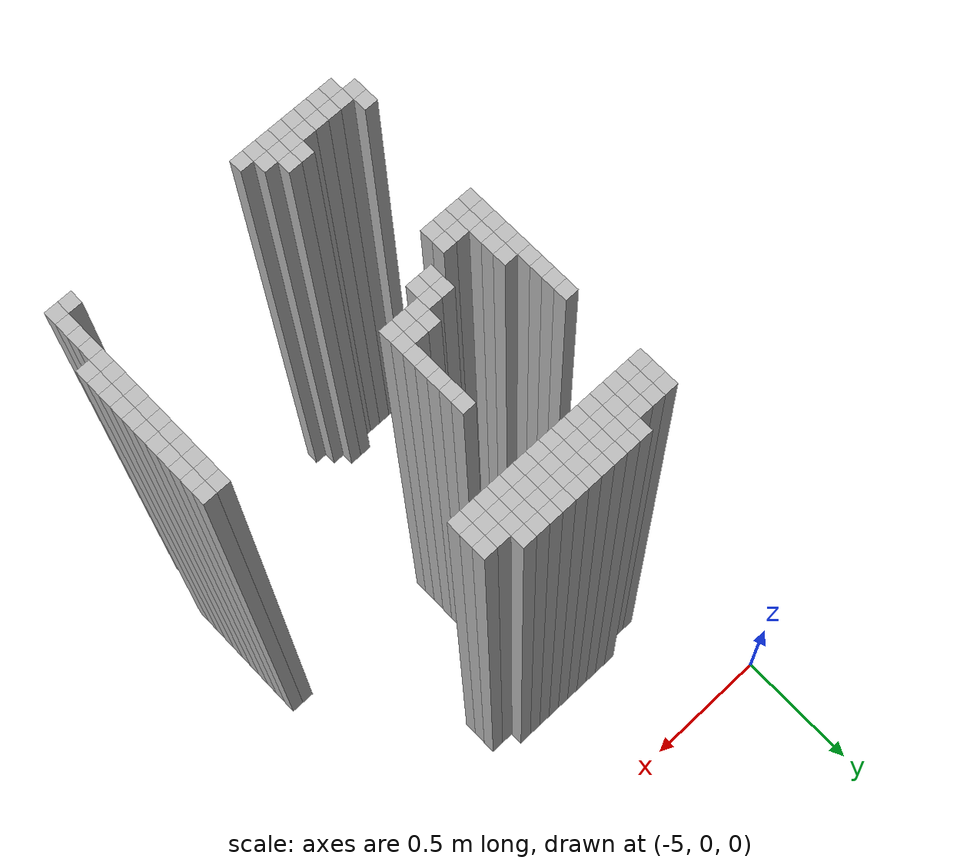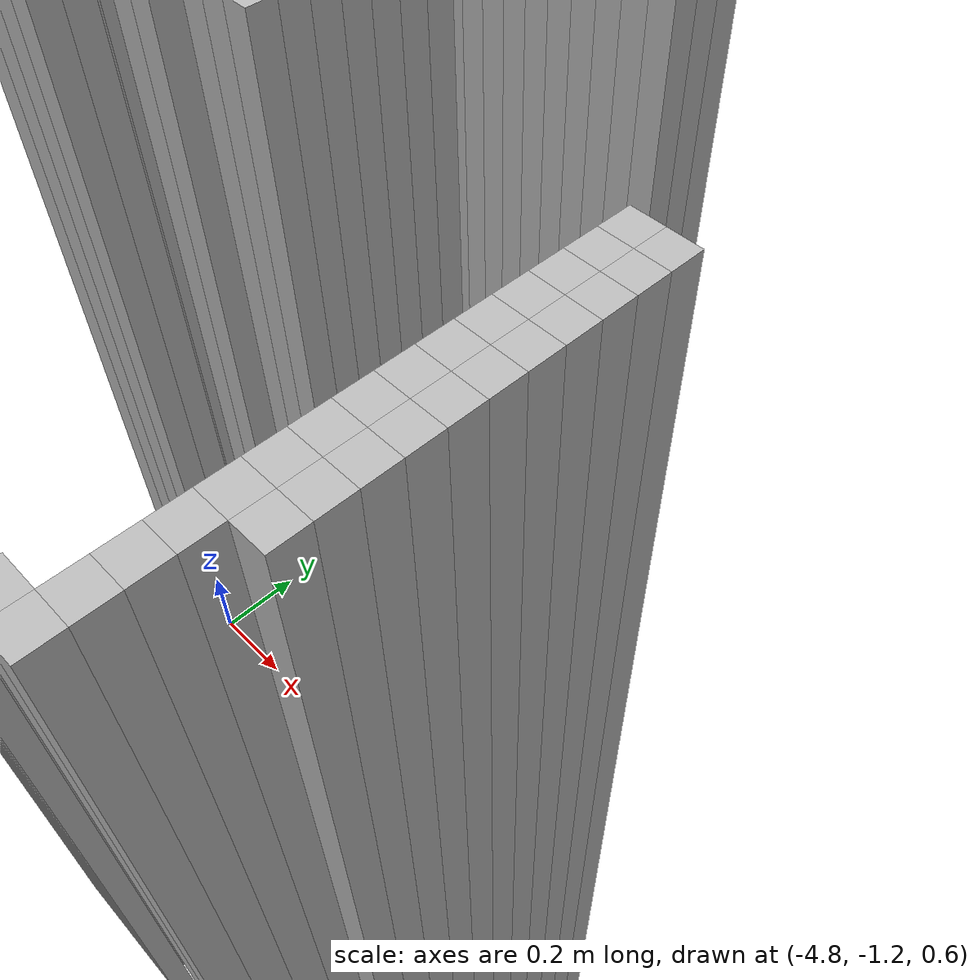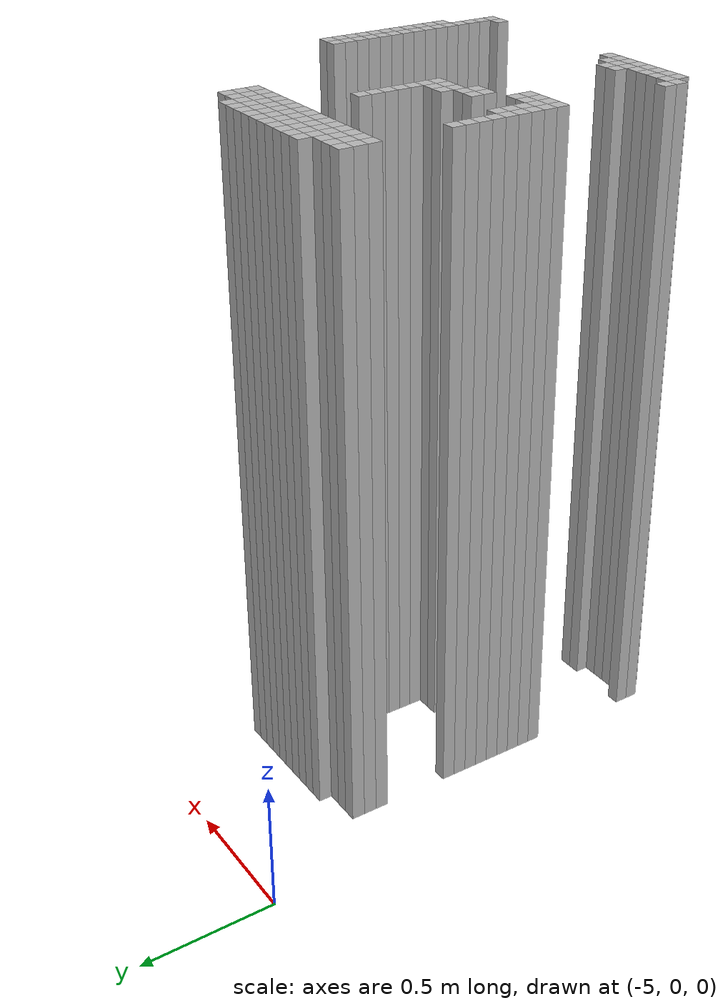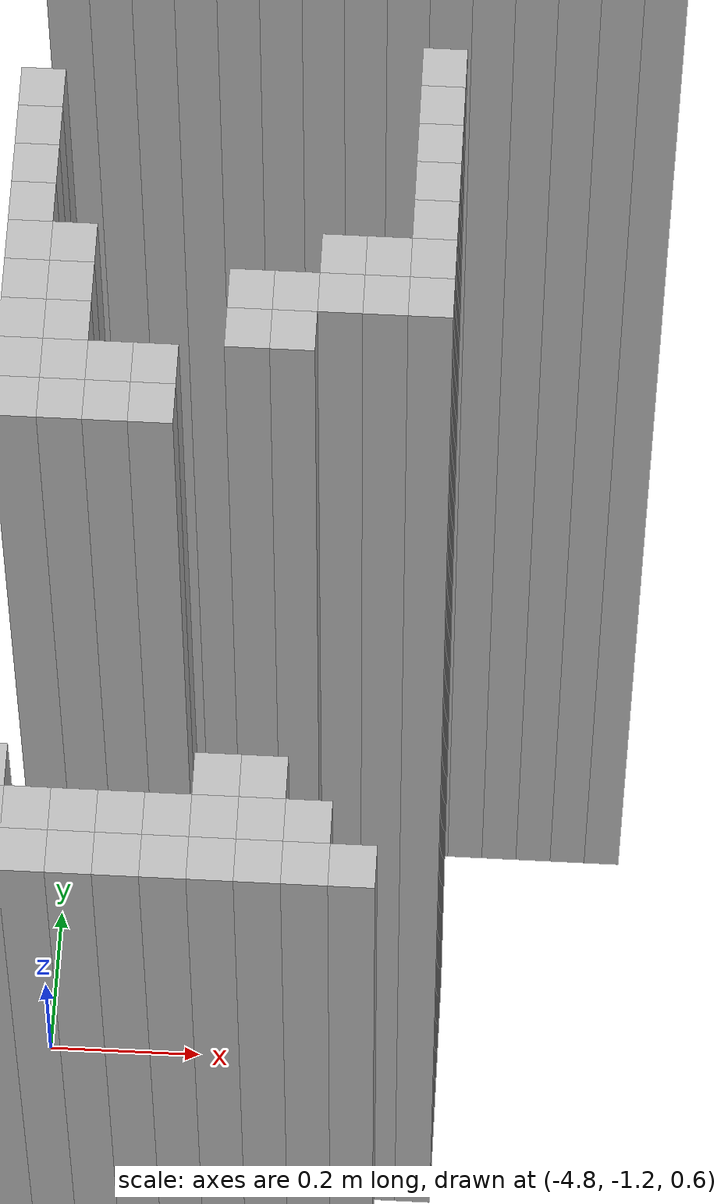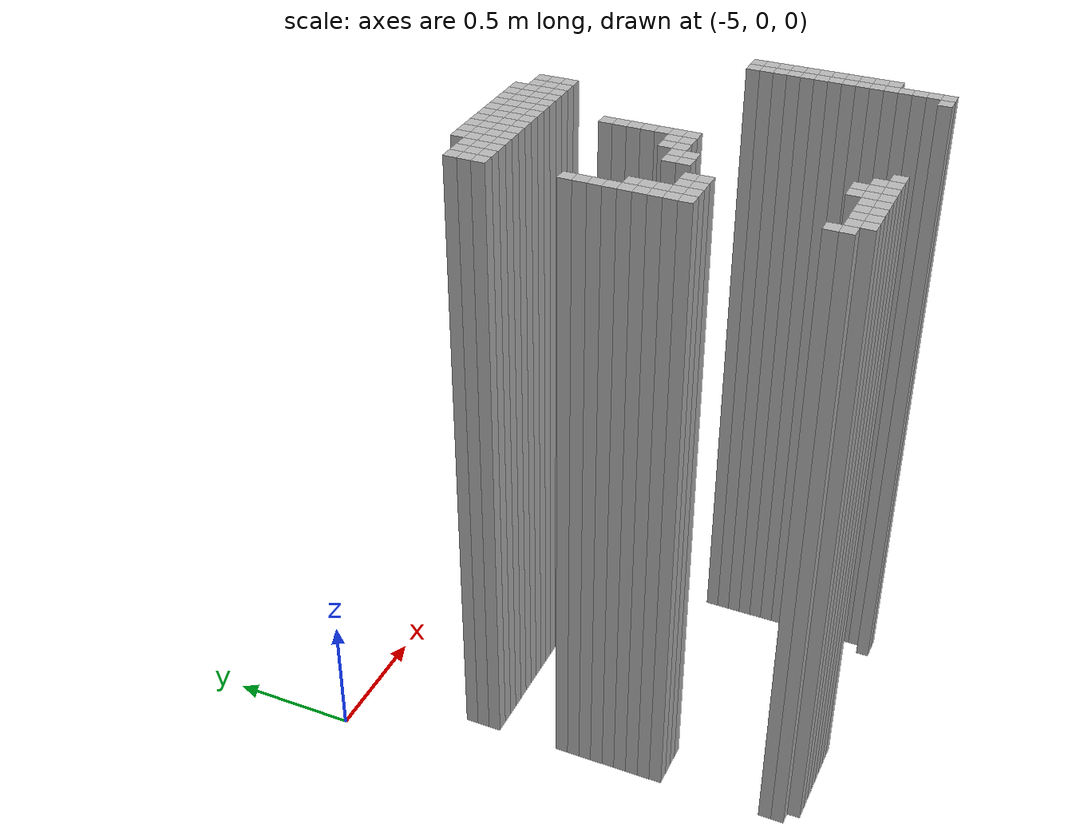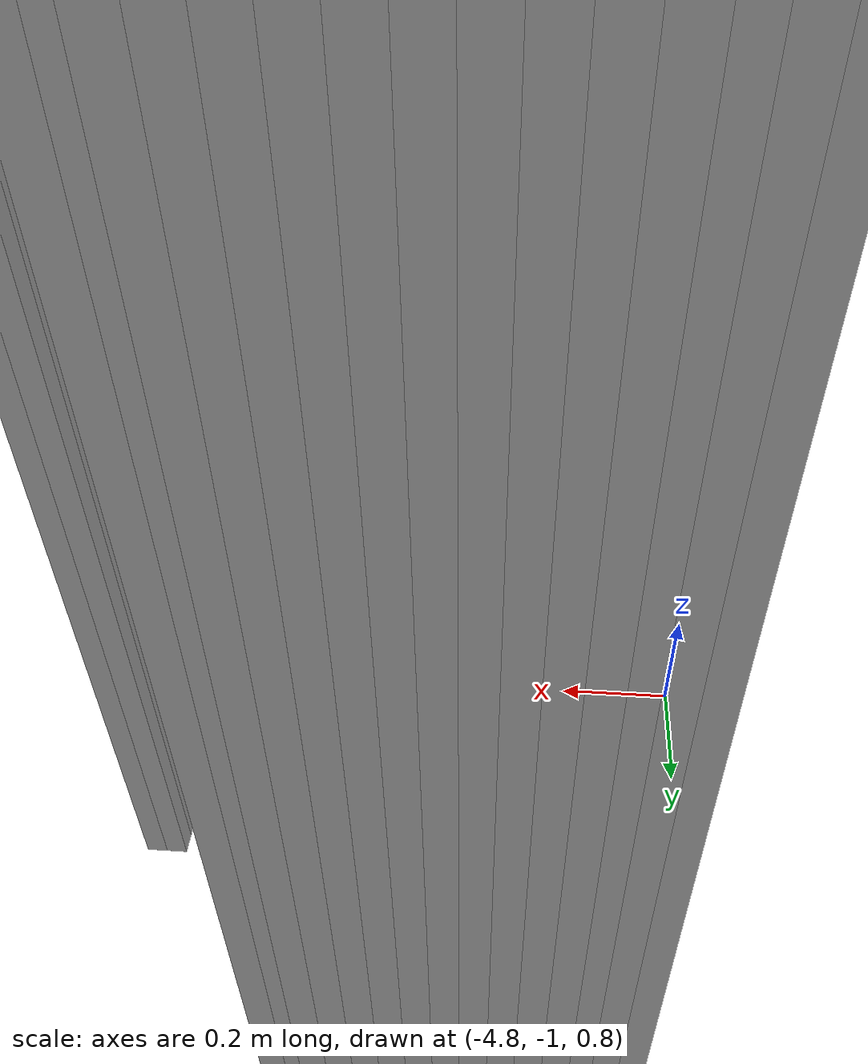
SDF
<sdf version="1.9">
 <world name="map_world">
  <model name="wall_131_162">
   <static>true</static>
   <pose>-4.611 -0.420 1.250 0 0 0</pose>
   <link name="link">
    <collision name="collision"><geometry><box><size>0.050 0.050 2.500</size></box></geometry></collision>
    <visual name="visual"><geometry><box><size>0.050 0.050 2.500</size></box></geometry></visual>
   </link>
  </model>
  <model name="wall_132_162">
   <static>true</static>
   <pose>-4.561 -0.420 1.250 0 0 0</pose>
   <link name="link">
    <collision name="collision"><geometry><box><size>0.050 0.050 2.500</size></box></geometry></collision>
    <visual name="visual"><geometry><box><size>0.050 0.050 2.500</size></box></geometry></visual>
   </link>
  </model>
  <model name="wall_133_162">
   <static>true</static>
   <pose>-4.511 -0.420 1.250 0 0 0</pose>
   <link name="link">
    <collision name="collision"><geometry><box><size>0.050 0.050 2.500</size></box></geometry></collision>
    <visual name="visual"><geometry><box><size>0.050 0.050 2.500</size></box></geometry></visual>
   </link>
  </model>
  <model name="wall_134_162">
   <static>true</static>
   <pose>-4.461 -0.420 1.250 0 0 0</pose>
   <link name="link">
    <collision name="collision"><geometry><box><size>0.050 0.050 2.500</size></box></geometry></collision>
    <visual name="visual"><geometry><box><size>0.050 0.050 2.500</size></box></geometry></visual>
   </link>
  </model>
  <model name="wall_135_162">
   <static>true</static>
   <pose>-4.411 -0.420 1.250 0 0 0</pose>
   <link name="link">
    <collision name="collision"><geometry><box><size>0.050 0.050 2.500</size></box></geometry></collision>
    <visual name="visual"><geometry><box><size>0.050 0.050 2.500</size></box></geometry></visual>
   </link>
  </model>
  <model name="wall_136_162">
   <static>true</static>
   <pose>-4.361 -0.420 1.250 0 0 0</pose>
   <link name="link">
    <collision name="collision"><geometry><box><size>0.050 0.050 2.500</size></box></geometry></collision>
    <visual name="visual"><geometry><box><size>0.050 0.050 2.500</size></box></geometry></visual>
   </link>
  </model>
  <model name="wall_137_162">
   <static>true</static>
   <pose>-4.311 -0.420 1.250 0 0 0</pose>
   <link name="link">
    <collision name="collision"><geometry><box><size>0.050 0.050 2.500</size></box></geometry></collision>
    <visual name="visual"><geometry><box><size>0.050 0.050 2.500</size></box></geometry></visual>
   </link>
  </model>
  <model name="wall_138_162">
   <static>true</static>
   <pose>-4.261 -0.420 1.250 0 0 0</pose>
   <link name="link">
    <collision name="collision"><geometry><box><size>0.050 0.050 2.500</size></box></geometry></collision>
    <visual name="visual"><geometry><box><size>0.050 0.050 2.500</size></box></geometry></visual>
   </link>
  </model>
  <model name="wall_139_162">
   <static>true</static>
   <pose>-4.211 -0.420 1.250 0 0 0</pose>
   <link name="link">
    <collision name="collision"><geometry><box><size>0.050 0.050 2.500</size></box></geometry></collision>
    <visual name="visual"><geometry><box><size>0.050 0.050 2.500</size></box></geometry></visual>
   </link>
  </model>
  <model name="wall_140_162">
   <static>true</static>
   <pose>-4.161 -0.420 1.250 0 0 0</pose>
   <link name="link">
    <collision name="collision"><geometry><box><size>0.050 0.050 2.500</size></box></geometry></collision>
    <visual name="visual"><geometry><box><size>0.050 0.050 2.500</size></box></geometry></visual>
   </link>
  </model>
  <model name="wall_128_163">
   <static>true</static>
   <pose>-4.761 -0.470 1.250 0 0 0</pose>
   <link name="link">
    <collision name="collision"><geometry><box><size>0.050 0.050 2.500</size></box></geometry></collision>
    <visual name="visual"><geometry><box><size>0.050 0.050 2.500</size></box></geometry></visual>
   </link>
  </model>
  <model name="wall_129_163">
   <static>true</static>
   <pose>-4.711 -0.470 1.250 0 0 0</pose>
   <link name="link">
    <collision name="collision"><geometry><box><size>0.050 0.050 2.500</size></box></geometry></collision>
    <visual name="visual"><geometry><box><size>0.050 0.050 2.500</size></box></geometry></visual>
   </link>
  </model>
  <model name="wall_130_163">
   <static>true</static>
   <pose>-4.661 -0.470 1.250 0 0 0</pose>
   <link name="link">
    <collision name="collision"><geometry><box><size>0.050 0.050 2.500</size></box></geometry></collision>
    <visual name="visual"><geometry><box><size>0.050 0.050 2.500</size></box></geometry></visual>
   </link>
  </model>
  <model name="wall_131_163">
   <static>true</static>
   <pose>-4.611 -0.470 1.250 0 0 0</pose>
   <link name="link">
    <collision name="collision"><geometry><box><size>0.050 0.050 2.500</size></box></geometry></collision>
    <visual name="visual"><geometry><box><size>0.050 0.050 2.500</size></box></geometry></visual>
   </link>
  </model>
  <model name="wall_132_163">
   <static>true</static>
   <pose>-4.561 -0.470 1.250 0 0 0</pose>
   <link name="link">
    <collision name="collision"><geometry><box><size>0.050 0.050 2.500</size></box></geometry></collision>
    <visual name="visual"><geometry><box><size>0.050 0.050 2.500</size></box></geometry></visual>
   </link>
  </model>
  <model name="wall_133_163">
   <static>true</static>
   <pose>-4.511 -0.470 1.250 0 0 0</pose>
   <link name="link">
    <collision name="collision"><geometry><box><size>0.050 0.050 2.500</size></box></geometry></collision>
    <visual name="visual"><geometry><box><size>0.050 0.050 2.500</size></box></geometry></visual>
   </link>
  </model>
  <model name="wall_134_163">
   <static>true</static>
   <pose>-4.461 -0.470 1.250 0 0 0</pose>
   <link name="link">
    <collision name="collision"><geometry><box><size>0.050 0.050 2.500</size></box></geometry></collision>
    <visual name="visual"><geometry><box><size>0.050 0.050 2.500</size></box></geometry></visual>
   </link>
  </model>
  <model name="wall_135_163">
   <static>true</static>
   <pose>-4.411 -0.470 1.250 0 0 0</pose>
   <link name="link">
    <collision name="collision"><geometry><box><size>0.050 0.050 2.500</size></box></geometry></collision>
    <visual name="visual"><geometry><box><size>0.050 0.050 2.500</size></box></geometry></visual>
   </link>
  </model>
  <model name="wall_136_163">
   <static>true</static>
   <pose>-4.361 -0.470 1.250 0 0 0</pose>
   <link name="link">
    <collision name="collision"><geometry><box><size>0.050 0.050 2.500</size></box></geometry></collision>
    <visual name="visual"><geometry><box><size>0.050 0.050 2.500</size></box></geometry></visual>
   </link>
  </model>
  <model name="wall_137_163">
   <static>true</static>
   <pose>-4.311 -0.470 1.250 0 0 0</pose>
   <link name="link">
    <collision name="collision"><geometry><box><size>0.050 0.050 2.500</size></box></geometry></collision>
    <visual name="visual"><geometry><box><size>0.050 0.050 2.500</size></box></geometry></visual>
   </link>
  </model>
  <model name="wall_138_163">
   <static>true</static>
   <pose>-4.261 -0.470 1.250 0 0 0</pose>
   <link name="link">
    <collision name="collision"><geometry><box><size>0.050 0.050 2.500</size></box></geometry></collision>
    <visual name="visual"><geometry><box><size>0.050 0.050 2.500</size></box></geometry></visual>
   </link>
  </model>
  <model name="wall_139_163">
   <static>true</static>
   <pose>-4.211 -0.470 1.250 0 0 0</pose>
   <link name="link">
    <collision name="collision"><geometry><box><size>0.050 0.050 2.500</size></box></geometry></collision>
    <visual name="visual"><geometry><box><size>0.050 0.050 2.500</size></box></geometry></visual>
   </link>
  </model>
  <model name="wall_140_163">
   <static>true</static>
   <pose>-4.161 -0.470 1.250 0 0 0</pose>
   <link name="link">
    <collision name="collision"><geometry><box><size>0.050 0.050 2.500</size></box></geometry></collision>
    <visual name="visual"><geometry><box><size>0.050 0.050 2.500</size></box></geometry></visual>
   </link>
  </model>
  <model name="wall_141_163">
   <static>true</static>
   <pose>-4.111 -0.470 1.250 0 0 0</pose>
   <link name="link">
    <collision name="collision"><geometry><box><size>0.050 0.050 2.500</size></box></geometry></collision>
    <visual name="visual"><geometry><box><size>0.050 0.050 2.500</size></box></geometry></visual>
   </link>
  </model>
  <model name="wall_142_163">
   <static>true</static>
   <pose>-4.061 -0.470 1.250 0 0 0</pose>
   <link name="link">
    <collision name="collision"><geometry><box><size>0.050 0.050 2.500</size></box></geometry></collision>
    <visual name="visual"><geometry><box><size>0.050 0.050 2.500</size></box></geometry></visual>
   </link>
  </model>
  <model name="wall_128_164">
   <static>true</static>
   <pose>-4.761 -0.520 1.250 0 0 0</pose>
   <link name="link">
    <collision name="collision"><geometry><box><size>0.050 0.050 2.500</size></box></geometry></collision>
    <visual name="visual"><geometry><box><size>0.050 0.050 2.500</size></box></geometry></visual>
   </link>
  </model>
  <model name="wall_129_164">
   <static>true</static>
   <pose>-4.711 -0.520 1.250 0 0 0</pose>
   <link name="link">
    <collision name="collision"><geometry><box><size>0.050 0.050 2.500</size></box></geometry></collision>
    <visual name="visual"><geometry><box><size>0.050 0.050 2.500</size></box></geometry></visual>
   </link>
  </model>
  <model name="wall_130_164">
   <static>true</static>
   <pose>-4.661 -0.520 1.250 0 0 0</pose>
   <link name="link">
    <collision name="collision"><geometry><box><size>0.050 0.050 2.500</size></box></geometry></collision>
    <visual name="visual"><geometry><box><size>0.050 0.050 2.500</size></box></geometry></visual>
   </link>
  </model>
  <model name="wall_131_164">
   <static>true</static>
   <pose>-4.611 -0.520 1.250 0 0 0</pose>
   <link name="link">
    <collision name="collision"><geometry><box><size>0.050 0.050 2.500</size></box></geometry></collision>
    <visual name="visual"><geometry><box><size>0.050 0.050 2.500</size></box></geometry></visual>
   </link>
  </model>
  <model name="wall_132_164">
   <static>true</static>
   <pose>-4.561 -0.520 1.250 0 0 0</pose>
   <link name="link">
    <collision name="collision"><geometry><box><size>0.050 0.050 2.500</size></box></geometry></collision>
    <visual name="visual"><geometry><box><size>0.050 0.050 2.500</size></box></geometry></visual>
   </link>
  </model>
  <model name="wall_133_164">
   <static>true</static>
   <pose>-4.511 -0.520 1.250 0 0 0</pose>
   <link name="link">
    <collision name="collision"><geometry><box><size>0.050 0.050 2.500</size></box></geometry></collision>
    <visual name="visual"><geometry><box><size>0.050 0.050 2.500</size></box></geometry></visual>
   </link>
  </model>
  <model name="wall_134_164">
   <static>true</static>
   <pose>-4.461 -0.520 1.250 0 0 0</pose>
   <link name="link">
    <collision name="collision"><geometry><box><size>0.050 0.050 2.500</size></box></geometry></collision>
    <visual name="visual"><geometry><box><size>0.050 0.050 2.500</size></box></geometry></visual>
   </link>
  </model>
  <model name="wall_135_164">
   <static>true</static>
   <pose>-4.411 -0.520 1.250 0 0 0</pose>
   <link name="link">
    <collision name="collision"><geometry><box><size>0.050 0.050 2.500</size></box></geometry></collision>
    <visual name="visual"><geometry><box><size>0.050 0.050 2.500</size></box></geometry></visual>
   </link>
  </model>
  <model name="wall_136_164">
   <static>true</static>
   <pose>-4.361 -0.520 1.250 0 0 0</pose>
   <link name="link">
    <collision name="collision"><geometry><box><size>0.050 0.050 2.500</size></box></geometry></collision>
    <visual name="visual"><geometry><box><size>0.050 0.050 2.500</size></box></geometry></visual>
   </link>
  </model>
  <model name="wall_137_164">
   <static>true</static>
   <pose>-4.311 -0.520 1.250 0 0 0</pose>
   <link name="link">
    <collision name="collision"><geometry><box><size>0.050 0.050 2.500</size></box></geometry></collision>
    <visual name="visual"><geometry><box><size>0.050 0.050 2.500</size></box></geometry></visual>
   </link>
  </model>
  <model name="wall_138_164">
   <static>true</static>
   <pose>-4.261 -0.520 1.250 0 0 0</pose>
   <link name="link">
    <collision name="collision"><geometry><box><size>0.050 0.050 2.500</size></box></geometry></collision>
    <visual name="visual"><geometry><box><size>0.050 0.050 2.500</size></box></geometry></visual>
   </link>
  </model>
  <model name="wall_139_164">
   <static>true</static>
   <pose>-4.211 -0.520 1.250 0 0 0</pose>
   <link name="link">
    <collision name="collision"><geometry><box><size>0.050 0.050 2.500</size></box></geometry></collision>
    <visual name="visual"><geometry><box><size>0.050 0.050 2.500</size></box></geometry></visual>
   </link>
  </model>
  <model name="wall_140_164">
   <static>true</static>
   <pose>-4.161 -0.520 1.250 0 0 0</pose>
   <link name="link">
    <collision name="collision"><geometry><box><size>0.050 0.050 2.500</size></box></geometry></collision>
    <visual name="visual"><geometry><box><size>0.050 0.050 2.500</size></box></geometry></visual>
   </link>
  </model>
  <model name="wall_141_164">
   <static>true</static>
   <pose>-4.111 -0.520 1.250 0 0 0</pose>
   <link name="link">
    <collision name="collision"><geometry><box><size>0.050 0.050 2.500</size></box></geometry></collision>
    <visual name="visual"><geometry><box><size>0.050 0.050 2.500</size></box></geometry></visual>
   </link>
  </model>
  <model name="wall_142_164">
   <static>true</static>
   <pose>-4.061 -0.520 1.250 0 0 0</pose>
   <link name="link">
    <collision name="collision"><geometry><box><size>0.050 0.050 2.500</size></box></geometry></collision>
    <visual name="visual"><geometry><box><size>0.050 0.050 2.500</size></box></geometry></visual>
   </link>
  </model>
  <model name="wall_128_165">
   <static>true</static>
   <pose>-4.761 -0.570 1.250 0 0 0</pose>
   <link name="link">
    <collision name="collision"><geometry><box><size>0.050 0.050 2.500</size></box></geometry></collision>
    <visual name="visual"><geometry><box><size>0.050 0.050 2.500</size></box></geometry></visual>
   </link>
  </model>
  <model name="wall_129_165">
   <static>true</static>
   <pose>-4.711 -0.570 1.250 0 0 0</pose>
   <link name="link">
    <collision name="collision"><geometry><box><size>0.050 0.050 2.500</size></box></geometry></collision>
    <visual name="visual"><geometry><box><size>0.050 0.050 2.500</size></box></geometry></visual>
   </link>
  </model>
  <model name="wall_130_165">
   <static>true</static>
   <pose>-4.661 -0.570 1.250 0 0 0</pose>
   <link name="link">
    <collision name="collision"><geometry><box><size>0.050 0.050 2.500</size></box></geometry></collision>
    <visual name="visual"><geometry><box><size>0.050 0.050 2.500</size></box></geometry></visual>
   </link>
  </model>
  <model name="wall_131_165">
   <static>true</static>
   <pose>-4.611 -0.570 1.250 0 0 0</pose>
   <link name="link">
    <collision name="collision"><geometry><box><size>0.050 0.050 2.500</size></box></geometry></collision>
    <visual name="visual"><geometry><box><size>0.050 0.050 2.500</size></box></geometry></visual>
   </link>
  </model>
  <model name="wall_132_165">
   <static>true</static>
   <pose>-4.561 -0.570 1.250 0 0 0</pose>
   <link name="link">
    <collision name="collision"><geometry><box><size>0.050 0.050 2.500</size></box></geometry></collision>
    <visual name="visual"><geometry><box><size>0.050 0.050 2.500</size></box></geometry></visual>
   </link>
  </model>
  <model name="wall_133_165">
   <static>true</static>
   <pose>-4.511 -0.570 1.250 0 0 0</pose>
   <link name="link">
    <collision name="collision"><geometry><box><size>0.050 0.050 2.500</size></box></geometry></collision>
    <visual name="visual"><geometry><box><size>0.050 0.050 2.500</size></box></geometry></visual>
   </link>
  </model>
  <model name="wall_134_165">
   <static>true</static>
   <pose>-4.461 -0.570 1.250 0 0 0</pose>
   <link name="link">
    <collision name="collision"><geometry><box><size>0.050 0.050 2.500</size></box></geometry></collision>
    <visual name="visual"><geometry><box><size>0.050 0.050 2.500</size></box></geometry></visual>
   </link>
  </model>
  <model name="wall_135_165">
   <static>true</static>
   <pose>-4.411 -0.570 1.250 0 0 0</pose>
   <link name="link">
    <collision name="collision"><geometry><box><size>0.050 0.050 2.500</size></box></geometry></collision>
    <visual name="visual"><geometry><box><size>0.050 0.050 2.500</size></box></geometry></visual>
   </link>
  </model>
  <model name="wall_136_165">
   <static>true</static>
   <pose>-4.361 -0.570 1.250 0 0 0</pose>
   <link name="link">
    <collision name="collision"><geometry><box><size>0.050 0.050 2.500</size></box></geometry></collision>
    <visual name="visual"><geometry><box><size>0.050 0.050 2.500</size></box></geometry></visual>
   </link>
  </model>
  <model name="wall_137_165">
   <static>true</static>
   <pose>-4.311 -0.570 1.250 0 0 0</pose>
   <link name="link">
    <collision name="collision"><geometry><box><size>0.050 0.050 2.500</size></box></geometry></collision>
    <visual name="visual"><geometry><box><size>0.050 0.050 2.500</size></box></geometry></visual>
   </link>
  </model>
  <model name="wall_138_165">
   <static>true</static>
   <pose>-4.261 -0.570 1.250 0 0 0</pose>
   <link name="link">
    <collision name="collision"><geometry><box><size>0.050 0.050 2.500</size></box></geometry></collision>
    <visual name="visual"><geometry><box><size>0.050 0.050 2.500</size></box></geometry></visual>
   </link>
  </model>
  <model name="wall_139_165">
   <static>true</static>
   <pose>-4.211 -0.570 1.250 0 0 0</pose>
   <link name="link">
    <collision name="collision"><geometry><box><size>0.050 0.050 2.500</size></box></geometry></collision>
    <visual name="visual"><geometry><box><size>0.050 0.050 2.500</size></box></geometry></visual>
   </link>
  </model>
  <model name="wall_140_165">
   <static>true</static>
   <pose>-4.161 -0.570 1.250 0 0 0</pose>
   <link name="link">
    <collision name="collision"><geometry><box><size>0.050 0.050 2.500</size></box></geometry></collision>
    <visual name="visual"><geometry><box><size>0.050 0.050 2.500</size></box></geometry></visual>
   </link>
  </model>
  <model name="wall_141_165">
   <static>true</static>
   <pose>-4.111 -0.570 1.250 0 0 0</pose>
   <link name="link">
    <collision name="collision"><geometry><box><size>0.050 0.050 2.500</size></box></geometry></collision>
    <visual name="visual"><geometry><box><size>0.050 0.050 2.500</size></box></geometry></visual>
   </link>
  </model>
  <model name="wall_142_165">
   <static>true</static>
   <pose>-4.061 -0.570 1.250 0 0 0</pose>
   <link name="link">
    <collision name="collision"><geometry><box><size>0.050 0.050 2.500</size></box></geometry></collision>
    <visual name="visual"><geometry><box><size>0.050 0.050 2.500</size></box></geometry></visual>
   </link>
  </model>
  <model name="wall_137_170">
   <static>true</static>
   <pose>-4.311 -0.820 1.250 0 0 0</pose>
   <link name="link">
    <collision name="collision"><geometry><box><size>0.050 0.050 2.500</size></box></geometry></collision>
    <visual name="visual"><geometry><box><size>0.050 0.050 2.500</size></box></geometry></visual>
   </link>
  </model>
  <model name="wall_128_171">
   <static>true</static>
   <pose>-4.761 -0.870 1.250 0 0 0</pose>
   <link name="link">
    <collision name="collision"><geometry><box><size>0.050 0.050 2.500</size></box></geometry></collision>
    <visual name="visual"><geometry><box><size>0.050 0.050 2.500</size></box></geometry></visual>
   </link>
  </model>
  <model name="wall_137_171">
   <static>true</static>
   <pose>-4.311 -0.870 1.250 0 0 0</pose>
   <link name="link">
    <collision name="collision"><geometry><box><size>0.050 0.050 2.500</size></box></geometry></collision>
    <visual name="visual"><geometry><box><size>0.050 0.050 2.500</size></box></geometry></visual>
   </link>
  </model>
  <model name="wall_128_172">
   <static>true</static>
   <pose>-4.761 -0.920 1.250 0 0 0</pose>
   <link name="link">
    <collision name="collision"><geometry><box><size>0.050 0.050 2.500</size></box></geometry></collision>
    <visual name="visual"><geometry><box><size>0.050 0.050 2.500</size></box></geometry></visual>
   </link>
  </model>
  <model name="wall_137_172">
   <static>true</static>
   <pose>-4.311 -0.920 1.250 0 0 0</pose>
   <link name="link">
    <collision name="collision"><geometry><box><size>0.050 0.050 2.500</size></box></geometry></collision>
    <visual name="visual"><geometry><box><size>0.050 0.050 2.500</size></box></geometry></visual>
   </link>
  </model>
  <model name="wall_128_173">
   <static>true</static>
   <pose>-4.761 -0.970 1.250 0 0 0</pose>
   <link name="link">
    <collision name="collision"><geometry><box><size>0.050 0.050 2.500</size></box></geometry></collision>
    <visual name="visual"><geometry><box><size>0.050 0.050 2.500</size></box></geometry></visual>
   </link>
  </model>
  <model name="wall_137_173">
   <static>true</static>
   <pose>-4.311 -0.970 1.250 0 0 0</pose>
   <link name="link">
    <collision name="collision"><geometry><box><size>0.050 0.050 2.500</size></box></geometry></collision>
    <visual name="visual"><geometry><box><size>0.050 0.050 2.500</size></box></geometry></visual>
   </link>
  </model>
  <model name="wall_128_174">
   <static>true</static>
   <pose>-4.761 -1.020 1.250 0 0 0</pose>
   <link name="link">
    <collision name="collision"><geometry><box><size>0.050 0.050 2.500</size></box></geometry></collision>
    <visual name="visual"><geometry><box><size>0.050 0.050 2.500</size></box></geometry></visual>
   </link>
  </model>
  <model name="wall_137_174">
   <static>true</static>
   <pose>-4.311 -1.020 1.250 0 0 0</pose>
   <link name="link">
    <collision name="collision"><geometry><box><size>0.050 0.050 2.500</size></box></geometry></collision>
    <visual name="visual"><geometry><box><size>0.050 0.050 2.500</size></box></geometry></visual>
   </link>
  </model>
  <model name="wall_128_175">
   <static>true</static>
   <pose>-4.761 -1.070 1.250 0 0 0</pose>
   <link name="link">
    <collision name="collision"><geometry><box><size>0.050 0.050 2.500</size></box></geometry></collision>
    <visual name="visual"><geometry><box><size>0.050 0.050 2.500</size></box></geometry></visual>
   </link>
  </model>
  <model name="wall_129_175">
   <static>true</static>
   <pose>-4.711 -1.070 1.250 0 0 0</pose>
   <link name="link">
    <collision name="collision"><geometry><box><size>0.050 0.050 2.500</size></box></geometry></collision>
    <visual name="visual"><geometry><box><size>0.050 0.050 2.500</size></box></geometry></visual>
   </link>
  </model>
  <model name="wall_135_175">
   <static>true</static>
   <pose>-4.411 -1.070 1.250 0 0 0</pose>
   <link name="link">
    <collision name="collision"><geometry><box><size>0.050 0.050 2.500</size></box></geometry></collision>
    <visual name="visual"><geometry><box><size>0.050 0.050 2.500</size></box></geometry></visual>
   </link>
  </model>
  <model name="wall_136_175">
   <static>true</static>
   <pose>-4.361 -1.070 1.250 0 0 0</pose>
   <link name="link">
    <collision name="collision"><geometry><box><size>0.050 0.050 2.500</size></box></geometry></collision>
    <visual name="visual"><geometry><box><size>0.050 0.050 2.500</size></box></geometry></visual>
   </link>
  </model>
  <model name="wall_137_175">
   <static>true</static>
   <pose>-4.311 -1.070 1.250 0 0 0</pose>
   <link name="link">
    <collision name="collision"><geometry><box><size>0.050 0.050 2.500</size></box></geometry></collision>
    <visual name="visual"><geometry><box><size>0.050 0.050 2.500</size></box></geometry></visual>
   </link>
  </model>
  <model name="wall_128_176">
   <static>true</static>
   <pose>-4.761 -1.120 1.250 0 0 0</pose>
   <link name="link">
    <collision name="collision"><geometry><box><size>0.050 0.050 2.500</size></box></geometry></collision>
    <visual name="visual"><geometry><box><size>0.050 0.050 2.500</size></box></geometry></visual>
   </link>
  </model>
  <model name="wall_129_176">
   <static>true</static>
   <pose>-4.711 -1.120 1.250 0 0 0</pose>
   <link name="link">
    <collision name="collision"><geometry><box><size>0.050 0.050 2.500</size></box></geometry></collision>
    <visual name="visual"><geometry><box><size>0.050 0.050 2.500</size></box></geometry></visual>
   </link>
  </model>
  <model name="wall_133_176">
   <static>true</static>
   <pose>-4.511 -1.120 1.250 0 0 0</pose>
   <link name="link">
    <collision name="collision"><geometry><box><size>0.050 0.050 2.500</size></box></geometry></collision>
    <visual name="visual"><geometry><box><size>0.050 0.050 2.500</size></box></geometry></visual>
   </link>
  </model>
  <model name="wall_134_176">
   <static>true</static>
   <pose>-4.461 -1.120 1.250 0 0 0</pose>
   <link name="link">
    <collision name="collision"><geometry><box><size>0.050 0.050 2.500</size></box></geometry></collision>
    <visual name="visual"><geometry><box><size>0.050 0.050 2.500</size></box></geometry></visual>
   </link>
  </model>
  <model name="wall_135_176">
   <static>true</static>
   <pose>-4.411 -1.120 1.250 0 0 0</pose>
   <link name="link">
    <collision name="collision"><geometry><box><size>0.050 0.050 2.500</size></box></geometry></collision>
    <visual name="visual"><geometry><box><size>0.050 0.050 2.500</size></box></geometry></visual>
   </link>
  </model>
  <model name="wall_136_176">
   <static>true</static>
   <pose>-4.361 -1.120 1.250 0 0 0</pose>
   <link name="link">
    <collision name="collision"><geometry><box><size>0.050 0.050 2.500</size></box></geometry></collision>
    <visual name="visual"><geometry><box><size>0.050 0.050 2.500</size></box></geometry></visual>
   </link>
  </model>
  <model name="wall_137_176">
   <static>true</static>
   <pose>-4.311 -1.120 1.250 0 0 0</pose>
   <link name="link">
    <collision name="collision"><geometry><box><size>0.050 0.050 2.500</size></box></geometry></collision>
    <visual name="visual"><geometry><box><size>0.050 0.050 2.500</size></box></geometry></visual>
   </link>
  </model>
  <model name="wall_150_176">
   <static>true</static>
   <pose>-3.661 -1.120 1.250 0 0 0</pose>
   <link name="link">
    <collision name="collision"><geometry><box><size>0.050 0.050 2.500</size></box></geometry></collision>
    <visual name="visual"><geometry><box><size>0.050 0.050 2.500</size></box></geometry></visual>
   </link>
  </model>
  <model name="wall_151_176">
   <static>true</static>
   <pose>-3.611 -1.120 1.250 0 0 0</pose>
   <link name="link">
    <collision name="collision"><geometry><box><size>0.050 0.050 2.500</size></box></geometry></collision>
    <visual name="visual"><geometry><box><size>0.050 0.050 2.500</size></box></geometry></visual>
   </link>
  </model>
  <model name="wall_128_177">
   <static>true</static>
   <pose>-4.761 -1.170 1.250 0 0 0</pose>
   <link name="link">
    <collision name="collision"><geometry><box><size>0.050 0.050 2.500</size></box></geometry></collision>
    <visual name="visual"><geometry><box><size>0.050 0.050 2.500</size></box></geometry></visual>
   </link>
  </model>
  <model name="wall_129_177">
   <static>true</static>
   <pose>-4.711 -1.170 1.250 0 0 0</pose>
   <link name="link">
    <collision name="collision"><geometry><box><size>0.050 0.050 2.500</size></box></geometry></collision>
    <visual name="visual"><geometry><box><size>0.050 0.050 2.500</size></box></geometry></visual>
   </link>
  </model>
  <model name="wall_133_177">
   <static>true</static>
   <pose>-4.511 -1.170 1.250 0 0 0</pose>
   <link name="link">
    <collision name="collision"><geometry><box><size>0.050 0.050 2.500</size></box></geometry></collision>
    <visual name="visual"><geometry><box><size>0.050 0.050 2.500</size></box></geometry></visual>
   </link>
  </model>
  <model name="wall_134_177">
   <static>true</static>
   <pose>-4.461 -1.170 1.250 0 0 0</pose>
   <link name="link">
    <collision name="collision"><geometry><box><size>0.050 0.050 2.500</size></box></geometry></collision>
    <visual name="visual"><geometry><box><size>0.050 0.050 2.500</size></box></geometry></visual>
   </link>
  </model>
  <model name="wall_150_177">
   <static>true</static>
   <pose>-3.661 -1.170 1.250 0 0 0</pose>
   <link name="link">
    <collision name="collision"><geometry><box><size>0.050 0.050 2.500</size></box></geometry></collision>
    <visual name="visual"><geometry><box><size>0.050 0.050 2.500</size></box></geometry></visual>
   </link>
  </model>
  <model name="wall_151_177">
   <static>true</static>
   <pose>-3.611 -1.170 1.250 0 0 0</pose>
   <link name="link">
    <collision name="collision"><geometry><box><size>0.050 0.050 2.500</size></box></geometry></collision>
    <visual name="visual"><geometry><box><size>0.050 0.050 2.500</size></box></geometry></visual>
   </link>
  </model>
  <model name="wall_128_178">
   <static>true</static>
   <pose>-4.761 -1.220 1.250 0 0 0</pose>
   <link name="link">
    <collision name="collision"><geometry><box><size>0.050 0.050 2.500</size></box></geometry></collision>
    <visual name="visual"><geometry><box><size>0.050 0.050 2.500</size></box></geometry></visual>
   </link>
  </model>
  <model name="wall_129_178">
   <static>true</static>
   <pose>-4.711 -1.220 1.250 0 0 0</pose>
   <link name="link">
    <collision name="collision"><geometry><box><size>0.050 0.050 2.500</size></box></geometry></collision>
    <visual name="visual"><geometry><box><size>0.050 0.050 2.500</size></box></geometry></visual>
   </link>
  </model>
  <model name="wall_130_178">
   <static>true</static>
   <pose>-4.661 -1.220 1.250 0 0 0</pose>
   <link name="link">
    <collision name="collision"><geometry><box><size>0.050 0.050 2.500</size></box></geometry></collision>
    <visual name="visual"><geometry><box><size>0.050 0.050 2.500</size></box></geometry></visual>
   </link>
  </model>
  <model name="wall_131_178">
   <static>true</static>
   <pose>-4.611 -1.220 1.250 0 0 0</pose>
   <link name="link">
    <collision name="collision"><geometry><box><size>0.050 0.050 2.500</size></box></geometry></collision>
    <visual name="visual"><geometry><box><size>0.050 0.050 2.500</size></box></geometry></visual>
   </link>
  </model>
  <model name="wall_150_178">
   <static>true</static>
   <pose>-3.661 -1.220 1.250 0 0 0</pose>
   <link name="link">
    <collision name="collision"><geometry><box><size>0.050 0.050 2.500</size></box></geometry></collision>
    <visual name="visual"><geometry><box><size>0.050 0.050 2.500</size></box></geometry></visual>
   </link>
  </model>
  <model name="wall_151_178">
   <static>true</static>
   <pose>-3.611 -1.220 1.250 0 0 0</pose>
   <link name="link">
    <collision name="collision"><geometry><box><size>0.050 0.050 2.500</size></box></geometry></collision>
    <visual name="visual"><geometry><box><size>0.050 0.050 2.500</size></box></geometry></visual>
   </link>
  </model>
  <model name="wall_128_179">
   <static>true</static>
   <pose>-4.761 -1.270 1.250 0 0 0</pose>
   <link name="link">
    <collision name="collision"><geometry><box><size>0.050 0.050 2.500</size></box></geometry></collision>
    <visual name="visual"><geometry><box><size>0.050 0.050 2.500</size></box></geometry></visual>
   </link>
  </model>
  <model name="wall_129_179">
   <static>true</static>
   <pose>-4.711 -1.270 1.250 0 0 0</pose>
   <link name="link">
    <collision name="collision"><geometry><box><size>0.050 0.050 2.500</size></box></geometry></collision>
    <visual name="visual"><geometry><box><size>0.050 0.050 2.500</size></box></geometry></visual>
   </link>
  </model>
  <model name="wall_130_179">
   <static>true</static>
   <pose>-4.661 -1.270 1.250 0 0 0</pose>
   <link name="link">
    <collision name="collision"><geometry><box><size>0.050 0.050 2.500</size></box></geometry></collision>
    <visual name="visual"><geometry><box><size>0.050 0.050 2.500</size></box></geometry></visual>
   </link>
  </model>
  <model name="wall_131_179">
   <static>true</static>
   <pose>-4.611 -1.270 1.250 0 0 0</pose>
   <link name="link">
    <collision name="collision"><geometry><box><size>0.050 0.050 2.500</size></box></geometry></collision>
    <visual name="visual"><geometry><box><size>0.050 0.050 2.500</size></box></geometry></visual>
   </link>
  </model>
  <model name="wall_150_179">
   <static>true</static>
   <pose>-3.661 -1.270 1.250 0 0 0</pose>
   <link name="link">
    <collision name="collision"><geometry><box><size>0.050 0.050 2.500</size></box></geometry></collision>
    <visual name="visual"><geometry><box><size>0.050 0.050 2.500</size></box></geometry></visual>
   </link>
  </model>
  <model name="wall_151_179">
   <static>true</static>
   <pose>-3.611 -1.270 1.250 0 0 0</pose>
   <link name="link">
    <collision name="collision"><geometry><box><size>0.050 0.050 2.500</size></box></geometry></collision>
    <visual name="visual"><geometry><box><size>0.050 0.050 2.500</size></box></geometry></visual>
   </link>
  </model>
  <model name="wall_150_180">
   <static>true</static>
   <pose>-3.661 -1.320 1.250 0 0 0</pose>
   <link name="link">
    <collision name="collision"><geometry><box><size>0.050 0.050 2.500</size></box></geometry></collision>
    <visual name="visual"><geometry><box><size>0.050 0.050 2.500</size></box></geometry></visual>
   </link>
  </model>
  <model name="wall_151_180">
   <static>true</static>
   <pose>-3.611 -1.320 1.250 0 0 0</pose>
   <link name="link">
    <collision name="collision"><geometry><box><size>0.050 0.050 2.500</size></box></geometry></collision>
    <visual name="visual"><geometry><box><size>0.050 0.050 2.500</size></box></geometry></visual>
   </link>
  </model>
  <model name="wall_150_181">
   <static>true</static>
   <pose>-3.661 -1.370 1.250 0 0 0</pose>
   <link name="link">
    <collision name="collision"><geometry><box><size>0.050 0.050 2.500</size></box></geometry></collision>
    <visual name="visual"><geometry><box><size>0.050 0.050 2.500</size></box></geometry></visual>
   </link>
  </model>
  <model name="wall_151_181">
   <static>true</static>
   <pose>-3.611 -1.370 1.250 0 0 0</pose>
   <link name="link">
    <collision name="collision"><geometry><box><size>0.050 0.050 2.500</size></box></geometry></collision>
    <visual name="visual"><geometry><box><size>0.050 0.050 2.500</size></box></geometry></visual>
   </link>
  </model>
  <model name="wall_150_182">
   <static>true</static>
   <pose>-3.661 -1.420 1.250 0 0 0</pose>
   <link name="link">
    <collision name="collision"><geometry><box><size>0.050 0.050 2.500</size></box></geometry></collision>
    <visual name="visual"><geometry><box><size>0.050 0.050 2.500</size></box></geometry></visual>
   </link>
  </model>
  <model name="wall_151_182">
   <static>true</static>
   <pose>-3.611 -1.420 1.250 0 0 0</pose>
   <link name="link">
    <collision name="collision"><geometry><box><size>0.050 0.050 2.500</size></box></geometry></collision>
    <visual name="visual"><geometry><box><size>0.050 0.050 2.500</size></box></geometry></visual>
   </link>
  </model>
  <model name="wall_150_183">
   <static>true</static>
   <pose>-3.661 -1.470 1.250 0 0 0</pose>
   <link name="link">
    <collision name="collision"><geometry><box><size>0.050 0.050 2.500</size></box></geometry></collision>
    <visual name="visual"><geometry><box><size>0.050 0.050 2.500</size></box></geometry></visual>
   </link>
  </model>
  <model name="wall_151_183">
   <static>true</static>
   <pose>-3.611 -1.470 1.250 0 0 0</pose>
   <link name="link">
    <collision name="collision"><geometry><box><size>0.050 0.050 2.500</size></box></geometry></collision>
    <visual name="visual"><geometry><box><size>0.050 0.050 2.500</size></box></geometry></visual>
   </link>
  </model>
  <model name="wall_150_184">
   <static>true</static>
   <pose>-3.661 -1.520 1.250 0 0 0</pose>
   <link name="link">
    <collision name="collision"><geometry><box><size>0.050 0.050 2.500</size></box></geometry></collision>
    <visual name="visual"><geometry><box><size>0.050 0.050 2.500</size></box></geometry></visual>
   </link>
  </model>
  <model name="wall_151_184">
   <static>true</static>
   <pose>-3.611 -1.520 1.250 0 0 0</pose>
   <link name="link">
    <collision name="collision"><geometry><box><size>0.050 0.050 2.500</size></box></geometry></collision>
    <visual name="visual"><geometry><box><size>0.050 0.050 2.500</size></box></geometry></visual>
   </link>
  </model>
  <model name="wall_150_185">
   <static>true</static>
   <pose>-3.661 -1.570 1.250 0 0 0</pose>
   <link name="link">
    <collision name="collision"><geometry><box><size>0.050 0.050 2.500</size></box></geometry></collision>
    <visual name="visual"><geometry><box><size>0.050 0.050 2.500</size></box></geometry></visual>
   </link>
  </model>
  <model name="wall_151_185">
   <static>true</static>
   <pose>-3.611 -1.570 1.250 0 0 0</pose>
   <link name="link">
    <collision name="collision"><geometry><box><size>0.050 0.050 2.500</size></box></geometry></collision>
    <visual name="visual"><geometry><box><size>0.050 0.050 2.500</size></box></geometry></visual>
   </link>
  </model>
  <model name="wall_150_186">
   <static>true</static>
   <pose>-3.661 -1.620 1.250 0 0 0</pose>
   <link name="link">
    <collision name="collision"><geometry><box><size>0.050 0.050 2.500</size></box></geometry></collision>
    <visual name="visual"><geometry><box><size>0.050 0.050 2.500</size></box></geometry></visual>
   </link>
  </model>
  <model name="wall_151_186">
   <static>true</static>
   <pose>-3.611 -1.620 1.250 0 0 0</pose>
   <link name="link">
    <collision name="collision"><geometry><box><size>0.050 0.050 2.500</size></box></geometry></collision>
    <visual name="visual"><geometry><box><size>0.050 0.050 2.500</size></box></geometry></visual>
   </link>
  </model>
  <model name="wall_150_187">
   <static>true</static>
   <pose>-3.661 -1.670 1.250 0 0 0</pose>
   <link name="link">
    <collision name="collision"><geometry><box><size>0.050 0.050 2.500</size></box></geometry></collision>
    <visual name="visual"><geometry><box><size>0.050 0.050 2.500</size></box></geometry></visual>
   </link>
  </model>
  <model name="wall_128_188">
   <static>true</static>
   <pose>-4.761 -1.720 1.250 0 0 0</pose>
   <link name="link">
    <collision name="collision"><geometry><box><size>0.050 0.050 2.500</size></box></geometry></collision>
    <visual name="visual"><geometry><box><size>0.050 0.050 2.500</size></box></geometry></visual>
   </link>
  </model>
  <model name="wall_133_188">
   <static>true</static>
   <pose>-4.511 -1.720 1.250 0 0 0</pose>
   <link name="link">
    <collision name="collision"><geometry><box><size>0.050 0.050 2.500</size></box></geometry></collision>
    <visual name="visual"><geometry><box><size>0.050 0.050 2.500</size></box></geometry></visual>
   </link>
  </model>
  <model name="wall_134_188">
   <static>true</static>
   <pose>-4.461 -1.720 1.250 0 0 0</pose>
   <link name="link">
    <collision name="collision"><geometry><box><size>0.050 0.050 2.500</size></box></geometry></collision>
    <visual name="visual"><geometry><box><size>0.050 0.050 2.500</size></box></geometry></visual>
   </link>
  </model>
  <model name="wall_150_188">
   <static>true</static>
   <pose>-3.661 -1.720 1.250 0 0 0</pose>
   <link name="link">
    <collision name="collision"><geometry><box><size>0.050 0.050 2.500</size></box></geometry></collision>
    <visual name="visual"><geometry><box><size>0.050 0.050 2.500</size></box></geometry></visual>
   </link>
  </model>
  <model name="wall_128_189">
   <static>true</static>
   <pose>-4.761 -1.770 1.250 0 0 0</pose>
   <link name="link">
    <collision name="collision"><geometry><box><size>0.050 0.050 2.500</size></box></geometry></collision>
    <visual name="visual"><geometry><box><size>0.050 0.050 2.500</size></box></geometry></visual>
   </link>
  </model>
  <model name="wall_129_189">
   <static>true</static>
   <pose>-4.711 -1.770 1.250 0 0 0</pose>
   <link name="link">
    <collision name="collision"><geometry><box><size>0.050 0.050 2.500</size></box></geometry></collision>
    <visual name="visual"><geometry><box><size>0.050 0.050 2.500</size></box></geometry></visual>
   </link>
  </model>
  <model name="wall_130_189">
   <static>true</static>
   <pose>-4.661 -1.770 1.250 0 0 0</pose>
   <link name="link">
    <collision name="collision"><geometry><box><size>0.050 0.050 2.500</size></box></geometry></collision>
    <visual name="visual"><geometry><box><size>0.050 0.050 2.500</size></box></geometry></visual>
   </link>
  </model>
  <model name="wall_131_189">
   <static>true</static>
   <pose>-4.611 -1.770 1.250 0 0 0</pose>
   <link name="link">
    <collision name="collision"><geometry><box><size>0.050 0.050 2.500</size></box></geometry></collision>
    <visual name="visual"><geometry><box><size>0.050 0.050 2.500</size></box></geometry></visual>
   </link>
  </model>
  <model name="wall_132_189">
   <static>true</static>
   <pose>-4.561 -1.770 1.250 0 0 0</pose>
   <link name="link">
    <collision name="collision"><geometry><box><size>0.050 0.050 2.500</size></box></geometry></collision>
    <visual name="visual"><geometry><box><size>0.050 0.050 2.500</size></box></geometry></visual>
   </link>
  </model>
  <model name="wall_133_189">
   <static>true</static>
   <pose>-4.511 -1.770 1.250 0 0 0</pose>
   <link name="link">
    <collision name="collision"><geometry><box><size>0.050 0.050 2.500</size></box></geometry></collision>
    <visual name="visual"><geometry><box><size>0.050 0.050 2.500</size></box></geometry></visual>
   </link>
  </model>
  <model name="wall_134_189">
   <static>true</static>
   <pose>-4.461 -1.770 1.250 0 0 0</pose>
   <link name="link">
    <collision name="collision"><geometry><box><size>0.050 0.050 2.500</size></box></geometry></collision>
    <visual name="visual"><geometry><box><size>0.050 0.050 2.500</size></box></geometry></visual>
   </link>
  </model>
  <model name="wall_135_189">
   <static>true</static>
   <pose>-4.411 -1.770 1.250 0 0 0</pose>
   <link name="link">
    <collision name="collision"><geometry><box><size>0.050 0.050 2.500</size></box></geometry></collision>
    <visual name="visual"><geometry><box><size>0.050 0.050 2.500</size></box></geometry></visual>
   </link>
  </model>
  <model name="wall_150_189">
   <static>true</static>
   <pose>-3.661 -1.770 1.250 0 0 0</pose>
   <link name="link">
    <collision name="collision"><geometry><box><size>0.050 0.050 2.500</size></box></geometry></collision>
    <visual name="visual"><geometry><box><size>0.050 0.050 2.500</size></box></geometry></visual>
   </link>
  </model>
  <model name="wall_129_190">
   <static>true</static>
   <pose>-4.711 -1.820 1.250 0 0 0</pose>
   <link name="link">
    <collision name="collision"><geometry><box><size>0.050 0.050 2.500</size></box></geometry></collision>
    <visual name="visual"><geometry><box><size>0.050 0.050 2.500</size></box></geometry></visual>
   </link>
  </model>
  <model name="wall_130_190">
   <static>true</static>
   <pose>-4.661 -1.820 1.250 0 0 0</pose>
   <link name="link">
    <collision name="collision"><geometry><box><size>0.050 0.050 2.500</size></box></geometry></collision>
    <visual name="visual"><geometry><box><size>0.050 0.050 2.500</size></box></geometry></visual>
   </link>
  </model>
  <model name="wall_131_190">
   <static>true</static>
   <pose>-4.611 -1.820 1.250 0 0 0</pose>
   <link name="link">
    <collision name="collision"><geometry><box><size>0.050 0.050 2.500</size></box></geometry></collision>
    <visual name="visual"><geometry><box><size>0.050 0.050 2.500</size></box></geometry></visual>
   </link>
  </model>
  <model name="wall_132_190">
   <static>true</static>
   <pose>-4.561 -1.820 1.250 0 0 0</pose>
   <link name="link">
    <collision name="collision"><geometry><box><size>0.050 0.050 2.500</size></box></geometry></collision>
    <visual name="visual"><geometry><box><size>0.050 0.050 2.500</size></box></geometry></visual>
   </link>
  </model>
  <model name="wall_133_190">
   <static>true</static>
   <pose>-4.511 -1.820 1.250 0 0 0</pose>
   <link name="link">
    <collision name="collision"><geometry><box><size>0.050 0.050 2.500</size></box></geometry></collision>
    <visual name="visual"><geometry><box><size>0.050 0.050 2.500</size></box></geometry></visual>
   </link>
  </model>
  <model name="wall_134_190">
   <static>true</static>
   <pose>-4.461 -1.820 1.250 0 0 0</pose>
   <link name="link">
    <collision name="collision"><geometry><box><size>0.050 0.050 2.500</size></box></geometry></collision>
    <visual name="visual"><geometry><box><size>0.050 0.050 2.500</size></box></geometry></visual>
   </link>
  </model>
  <model name="wall_135_190">
   <static>true</static>
   <pose>-4.411 -1.820 1.250 0 0 0</pose>
   <link name="link">
    <collision name="collision"><geometry><box><size>0.050 0.050 2.500</size></box></geometry></collision>
    <visual name="visual"><geometry><box><size>0.050 0.050 2.500</size></box></geometry></visual>
   </link>
  </model>
  <model name="wall_136_190">
   <static>true</static>
   <pose>-4.361 -1.820 1.250 0 0 0</pose>
   <link name="link">
    <collision name="collision"><geometry><box><size>0.050 0.050 2.500</size></box></geometry></collision>
    <visual name="visual"><geometry><box><size>0.050 0.050 2.500</size></box></geometry></visual>
   </link>
  </model>
  <model name="wall_149_190">
   <static>true</static>
   <pose>-3.711 -1.820 1.250 0 0 0</pose>
   <link name="link">
    <collision name="collision"><geometry><box><size>0.050 0.050 2.500</size></box></geometry></collision>
    <visual name="visual"><geometry><box><size>0.050 0.050 2.500</size></box></geometry></visual>
   </link>
  </model>
  <model name="wall_150_190">
   <static>true</static>
   <pose>-3.661 -1.820 1.250 0 0 0</pose>
   <link name="link">
    <collision name="collision"><geometry><box><size>0.050 0.050 2.500</size></box></geometry></collision>
    <visual name="visual"><geometry><box><size>0.050 0.050 2.500</size></box></geometry></visual>
   </link>
  </model>
 </world>
</sdf>
